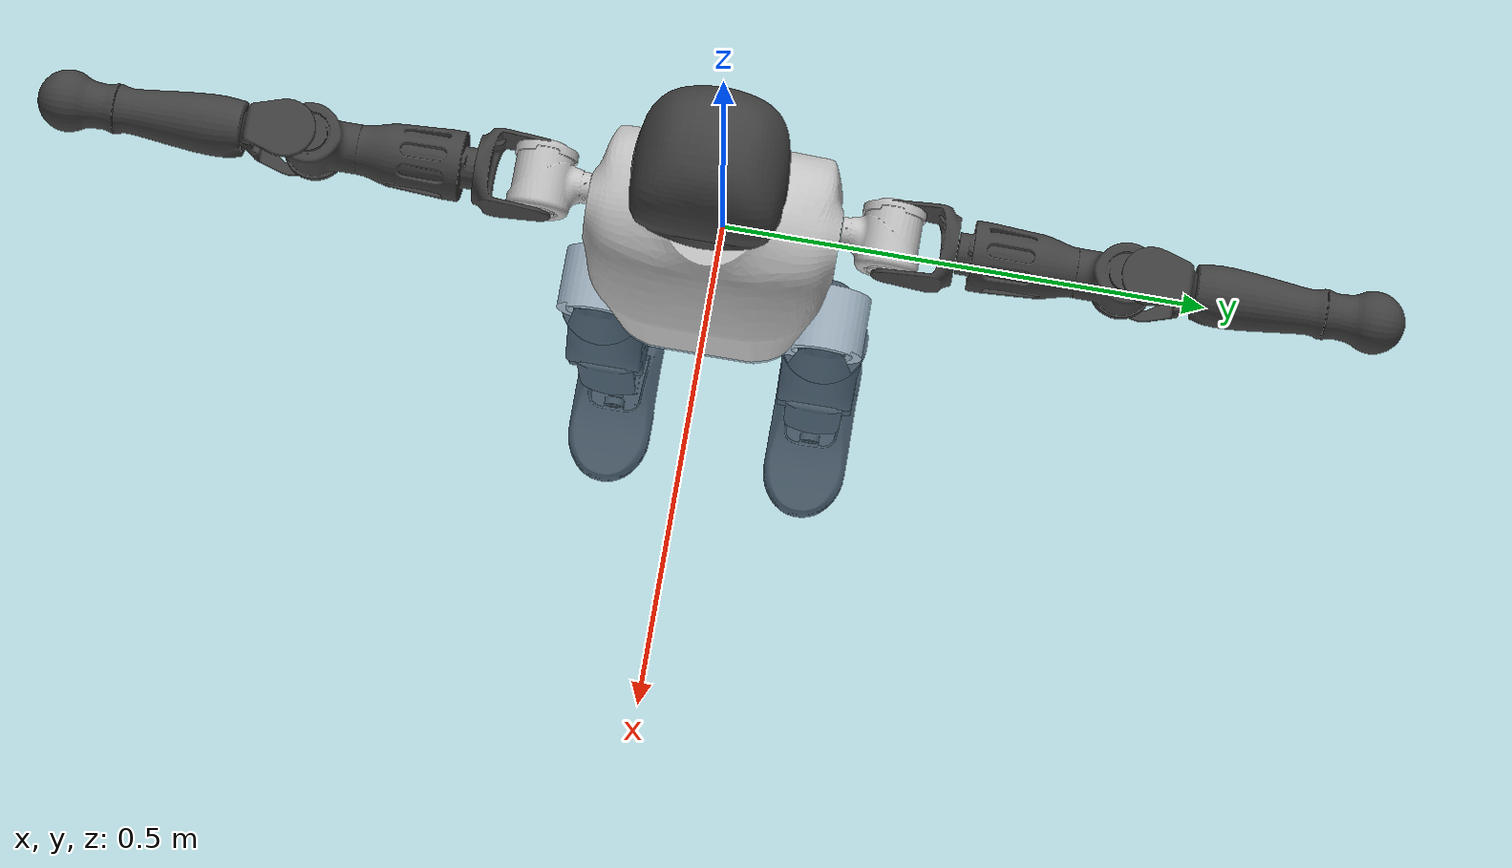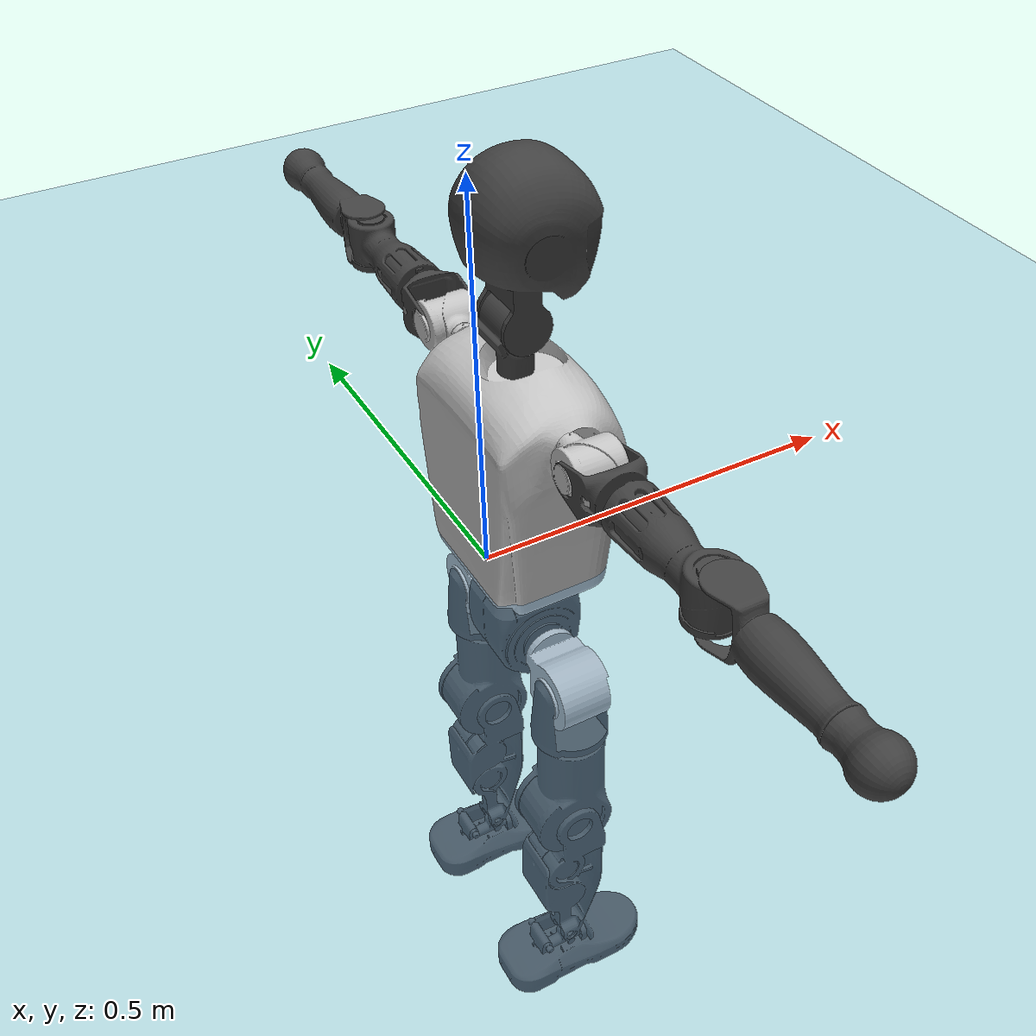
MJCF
<mujoco model="T1">
  <compiler angle="radian" assetdir="assets" balanceinertia="true" inertiafromgeom="false"/>

  <option timestep="0.005" density="1.2" viscosity="2e-05"/>

  <size nkey="1"/>

  <visual>
    <quality shadowsize="8192"/>
    <map shadowclip="0.5"/>
  </visual>

  <default>
    <default class="/">
      <joint armature="0.01" damping="0.01" frictionloss="0.1"/>
      <geom contype="0" conaffinity="0" group="1" solref="-1000 -80"/>
      <site size="0.01 0.005 0.005" group="5"/>
      <general forcelimited="true" biastype="affine" gainprm="25" biasprm="0 -25 -0.6"/>
      <default class="t1">
        <geom rgba="0.25 0.25 0.25 1"/>
        <default class="visual">
          <geom type="mesh" group="2"/>
        </default>
        <default class="collision">
          <geom group="3"/>
        </default>
        <default class="foot">
          <geom size="0.1115 0.05 0.015" type="box" condim="6" group="4" priority="1" solimp="0.015 1 0.015"/>
        </default>
        <default class="reward_collision_sphere">
          <geom group="5" rgba="1 0 0 1"/>
        </default>
      </default>
    </default>
  </default>

  <asset>
    <texture type="skybox" colorspace="auto" name="//unnamed_texture_0" builtin="gradient" rgb1="0.95 0.95 0.95" rgb2="0.95 0.95 0.95" width="100" height="600"/>
    <texture type="2d" colorspace="auto" name="texplane" builtin="checker" rgb1="0.345 0.575 0.748" rgb2="0.345 0.575 0.748" markrgb="1 1 1" width="512" height="512"/>
    <material name="MatPlane" class="/" texture="texplane" texuniform="true" texrepeat="2 2" specular="0.9"/>
    <mesh name="Trunk" class="/" file="Trunk.stl"/>
    <mesh name="H1" class="/" file="H1.stl"/>
    <mesh name="H2" class="/" file="H2.stl"/>
    <mesh name="AL1" class="/" file="AL1.stl"/>
    <mesh name="AL2" class="/" file="AL2.stl"/>
    <mesh name="AL3" class="/" file="AL3.stl"/>
    <mesh name="left_hand_link" class="/" file="left_hand_link.stl"/>
    <mesh name="AR1" class="/" file="AR1.stl"/>
    <mesh name="AR2" class="/" file="AR2.stl"/>
    <mesh name="AR3" class="/" file="AR3.stl"/>
    <mesh name="right_hand_link" class="/" file="right_hand_link.stl"/>
    <mesh name="Waist" class="/" file="Waist.stl"/>
    <mesh name="Hip_Pitch_Left" class="/" file="Hip_Pitch_Left.stl"/>
    <mesh name="Hip_Roll_Left" class="/" file="Hip_Roll_Left.stl"/>
    <mesh name="Hip_Yaw_Left" class="/" file="Hip_Yaw_Left.stl"/>
    <mesh name="Shank_Left" class="/" file="Shank_Left.stl"/>
    <mesh name="Ankle_Cross_Left" class="/" file="Ankle_Cross_Left.stl"/>
    <mesh name="left_foot_link" class="/" file="left_foot_link.stl"/>
    <mesh name="Hip_Pitch_Right" class="/" file="Hip_Pitch_Right.stl"/>
    <mesh name="Hip_Roll_Right" class="/" file="Hip_Roll_Right.stl"/>
    <mesh name="Hip_Yaw_Right" class="/" file="Hip_Yaw_Right.stl"/>
    <mesh name="Shank_Right" class="/" file="Shank_Right.stl"/>
    <mesh name="Ankle_Cross_Right" class="/" file="Ankle_Cross_Right.stl"/>
    <mesh name="right_foot_link" class="/" file="right_foot_link.stl"/>
  </asset>

  <worldbody>
    <geom name="floor" class="/" size="100 100 0.125" type="plane" group="0" material="MatPlane"/>
    <light name="toplight_shadow" class="/" pos="0 0 5" dir="0.0990148 0.0990148 -0.990148" type="directional" ambient="0.04 0.04 0.04" diffuse="0.55 0.55 0.55" specular="0.12 0.12 0.12"/>
    <light name="toplight_fill" class="/" pos="0 0 5" dir="0.0990148 0.0990148 -0.990148" type="directional" castshadow="false" ambient="0.04 0.04 0.04" diffuse="0.3 0.3 0.3" specular="0.08 0.08 0.08"/>
    <body name="trunk" childclass="t1" pos="-6.03715e-05 3.00333e-05 -0.000155699" quat="1 -5.17005e-05 -3.35159e-05 4.2606e-05">
      <inertial pos="0.0416138 -2.13076e-05 0.111802" quat="0.999986 -0.0010891 -0.00496806 -0.0015536" mass="11.6929" diaginertia="0.0258801 0.155908 0.0762766"/>
      <joint name="//unnamed_joint_0" type="free" armature="0" damping="0" frictionloss="0"/>
      <geom name="//unnamed_geom_1" class="visual" rgba="0.76 0.76 0.76 1" mesh="Trunk"/>
      <geom name="//unnamed_geom_2" class="collision" size="0.0747358 0.0996477 0.149472" pos="0.046515 0 0.127746" type="box"/>
      <geom name="//unnamed_geom_3" class="reward_collision_sphere" size="0.114595" pos="0.046515 0 0.106455"/>
      <geom name="//unnamed_geom_4" class="reward_collision_sphere" size="0.0149472" pos="0.046515 0.0977186 0"/>
      <geom name="//unnamed_geom_5" class="reward_collision_sphere" size="0.0149472" pos="0.046515 -0.0977186 0"/>
      <geom name="//unnamed_geom_6" class="reward_collision_sphere" size="0.0149472" pos="0.046515 0.12301 0.191619"/>
      <geom name="//unnamed_geom_7" class="reward_collision_sphere" size="0.0149472" pos="0.046515 -0.12301 0.191619"/>
      <site name="imu" pos="0.00404254 0.00274605 0.00225586" size="0.00996477"/>
      <camera name="track" pos="0 -2.29926 0" quat="0.707107 0.707107 0 0" mode="trackcom"/>
      <camera name="ego_camera" pos="0.0945805 0 0.447112" quat="-0.5 -0.5 0.5 0.5"/>
      <body name="H1" pos="0.0482594 3.83429e-05 0.257887" quat="1 -3.41265e-05 -3.56427e-05 -3.96737e-05">
        <inertial pos="-0.00107913 -0.0012276 0.0607711" quat="0.764414 -0.0139303 0.000857949 0.644575" mass="0.444651" diaginertia="6.81069e-05 0.000454731 0.000206041"/>
        <joint name="AAHead_yaw" pos="0 0 0" axis="-0.00103406 0.001042 0.999999" range="-1.56959 1.57176" armature="0.0100688" damping="0.00565416" frictionloss="0.0955167"/>
        <geom name="//unnamed_geom_8" class="visual" mesh="H1"/>
        <body name="H2" pos="-2.73481e-05 -0.000103221 0.0661124" quat="1 3.41535e-05 1.56491e-05 3.62391e-05">
          <inertial pos="0.00540482 0.00100563 0.104786" quat="0.988438 0.106358 -0.0747808 -0.0780082" mass="0.624412" diaginertia="0.000570263 0.00386012 0.00233058"/>
          <joint name="Head_pitch" pos="0 0 0" axis="0.0013997 -0.999998 0.0014095" stiffness="0.000159266" range="-1.21796 0.351774" armature="0.0100433" damping="0.00496093" frictionloss="0.104045"/>
          <geom name="//unnamed_geom_9" class="visual" mesh="H2"/>
          <geom name="//unnamed_geom_10" class="collision" size="0.0797182" pos="0.0077525 0 0.117101"/>
          <geom name="//unnamed_geom_11" class="reward_collision_sphere" size="0.089683" pos="0.015505 0 0.106455"/>
        </body>
      </body>
      <body name="AL1" pos="0.0462699 0.122515 0.233741" quat="1 4.50396e-05 0.000498319 2.97409e-05">
        <inertial pos="-0.000682029 0.052079 0.000462361" quat="0.504175 0.495724 -0.50388 0.496156" mass="0.523992" diaginertia="0.000382314 0.00259252 0.000397958"/>
        <joint name="Left_Shoulder_Pitch" pos="0 0 0" axis="0.000992722 0.999999 -0.000988569" range="-3.29682 1.21177" armature="0.0100011" damping="0.0105022" frictionloss="0.0999916"/>
        <geom name="//unnamed_geom_12" class="visual" rgba="0.76 0.76 0.76 1" mesh="AL1"/>
        <body name="AL2" pos="0.000813842 0.0544767 0.000897604" quat="1 -0.000143761 -0.000491 7.67931e-05">
          <inertial pos="0.00291719 0.0439472 -0.000970297" quat="0.485612 0.513431 -0.489549 0.510795" mass="0.156778" diaginertia="0.00011206 0.000690705 0.000240355"/>
          <joint name="Left_Shoulder_Roll" pos="0 0 0" axis="-1 -0.000800242 0.000185142" range="-1.57357 1.74264" armature="0.0101594" damping="0.00327885" frictionloss="0.0973016"/>
          <geom name="//unnamed_geom_13" class="visual" mesh="AL2"/>
          <body name="AL3" pos="0.000751774 0.0708431 -0.000392661" quat="1 -7.43097e-06 1.51003e-06 -1.70831e-06">
            <inertial pos="-0.000433886 0.0978138 0.000681188" quat="0.704861 0.709335 -0.000717713 0.00376474" mass="0.992695" diaginertia="0.00356142 0.0256549 0.000847198"/>
            <joint name="Left_Elbow_Pitch" pos="0 0 0" axis="-0.00202578 -0.999997 0.00141093" range="-2.26897 2.26942" armature="0.00981313" damping="0.0066825" frictionloss="0.0987506"/>
            <geom name="//unnamed_geom_14" class="visual" mesh="AL3"/>
            <geom name="//unnamed_geom_15" class="collision" size="0.0298943 0.0747358" pos="0 0.0574815 0" quat="0.707105 0.707108 0 0" type="cylinder"/>
            <geom name="//unnamed_geom_16" class="reward_collision_sphere" size="0.0358732"/>
            <body name="left_hand_link" pos="-3.58559e-09 0.169613 0.000631279" quat="1 0.000138561 -1.27692e-06 4.57267e-05">
              <inertial pos="-0.000432815 0.126052 0.000183372" quat="0.706856 0.707357 -0.000544565 0.000783588" mass="0.32479" diaginertia="0.00229957 0.0163094 0.000293461"/>
              <joint name="Left_Elbow_Yaw" pos="0 0 0" axis="0.000535321 0.001379 0.999999" range="-2.44563 0.00798407" armature="0.0100172" damping="0.00588027" frictionloss="0.096331"/>
              <geom name="//unnamed_geom_17" class="visual" mesh="left_hand_link"/>
              <geom name="//unnamed_geom_18" class="collision" size="0.0298943 0.0871918" pos="0 0.149452 0" quat="0.707105 0.707108 0 0" type="cylinder"/>
              <geom name="//unnamed_geom_19" class="reward_collision_sphere" size="0.0498239"/>
              <geom name="//unnamed_geom_20" class="reward_collision_sphere" size="0.0348767" pos="0 0.126459 0"/>
              <geom name="//unnamed_geom_21" class="reward_collision_sphere" size="0.0348767" pos="0 0.24717 0"/>
            </body>
          </body>
        </body>
      </body>
      <body name="AR1" pos="0.0450516 -0.121635 0.233792" quat="1 6.12632e-05 0.000773568 -0.0001093">
        <inertial pos="-0.00011562 -0.0517876 -0.000158566" quat="0.50418 0.495593 -0.504587 0.495563" mass="0.520358" diaginertia="0.000381826 0.00257215 0.000394874"/>
        <joint name="Right_Shoulder_Pitch" pos="0 0 0" axis="0.00200841 -0.999996 0.00216716" range="-1.22605 3.30486" armature="0.00993336" damping="0.00670546" frictionloss="0.0979817"/>
        <geom name="//unnamed_geom_22" class="visual" rgba="0.76 0.76 0.76 1" mesh="AR1"/>
        <body name="AR2" pos="-0.000780606 -0.0534347 -0.000219083" quat="1 -0.000113028 5.65229e-05 -6.97744e-06">
          <inertial pos="0.00374825 -0.0442475 0.000825582" quat="0.511918 0.48828 -0.511487 0.487753" mass="0.157854" diaginertia="0.00011118 0.000694795 0.000238956"/>
          <joint name="Right_Shoulder_Roll" pos="0 0 0" axis="-0.999978 0.00477356 0.00469426" range="-1.73964 1.56778" armature="0.0099575" damping="0.00385754" frictionloss="0.101884"/>
          <geom name="//unnamed_geom_23" class="visual" mesh="AR2"/>
          <body name="AR3" pos="0.000541214 -0.070253 -1.14069e-06" quat="1 -0.000293995 -0.000372082 0.000202771">
            <inertial pos="-8.50152e-06 -0.0978978 -0.000448587" quat="0.707907 0.706292 0.00430476 -0.000991807" mass="0.998381" diaginertia="0.00356346 0.0252819 0.00083904"/>
            <joint name="Right_Elbow_Pitch" pos="0 0 0" axis="-0.000708119 1 -0.000649565" range="-2.27283 2.27456" armature="0.00988688" damping="0.00735966" frictionloss="0.101778"/>
            <geom name="//unnamed_geom_24" class="visual" mesh="AR3"/>
            <geom name="//unnamed_geom_25" class="collision" size="0.0298943 0.0747358" pos="0 -0.0574815 0" quat="0.707105 0.707108 0 0" type="cylinder"/>
            <geom name="//unnamed_geom_26" class="reward_collision_sphere" size="0.0358732"/>
            <body name="right_hand_link" pos="-5.32275e-06 -0.168978 0.000125576" quat="1 9.14145e-05 2.12609e-05 0.000361373">
              <inertial pos="0.000187515 -0.126682 0.000705852" quat="0.705566 0.708641 -7.2499e-05 -0.00206573" mass="0.319133" diaginertia="0.00227572 0.0162662 0.000292997"/>
              <joint name="Right_Elbow_Yaw" pos="0 0 0" axis="-0.000744739 0.00139219 0.999999" range="-0.017826 2.43461" armature="0.0101055" damping="0.00711225" frictionloss="0.100487"/>
              <geom name="//unnamed_geom_27" class="visual" mesh="right_hand_link"/>
              <geom name="//unnamed_geom_28" class="collision" size="0.0298943 0.0871918" pos="0 -0.149452 0" quat="0.707105 0.707108 0 0" type="cylinder"/>
              <geom name="//unnamed_geom_29" class="reward_collision_sphere" size="0.0498239"/>
              <geom name="//unnamed_geom_30" class="reward_collision_sphere" size="0.0348767" pos="0 -0.126459 0"/>
              <geom name="//unnamed_geom_31" class="reward_collision_sphere" size="0.0348767" pos="0 -0.24717 0"/>
            </body>
          </body>
        </body>
      </body>
      <body name="Waist" pos="0.0494863 -0.00118111 -0.123766" quat="1 -3.45345e-05 -9.10513e-06 6.64483e-05">
        <inertial pos="0.000727118 3.17362e-05 0.00832874" quat="0.983715 0.000130818 -0.179709 0.00311526" mass="2.60517" diaginertia="0.00150774 0.0107776 0.00655427"/>
        <joint name="Waist" pos="0 0 0" axis="-0.000445431 -0.00113581 0.999999" range="-1.55575 1.57177" armature="0.009557" damping="0.0100476" frictionloss="0.0995923"/>
        <geom name="//unnamed_geom_32" class="visual" mesh="Waist"/>
        <body name="Hip_Pitch_Left" pos="0.000667737 0.121339 -0.000918805" quat="1 -0.000196852 2.06808e-06 0.000224039">
          <inertial pos="0.00050816 -0.00922405 -0.020283" quat="0.974718 0.223125 0.0117938 -0.000342566" mass="1.0136" diaginertia="0.000506581 0.00290105 0.00171218"/>
          <joint name="Left_Hip_Pitch" pos="0 0 0" axis="0.000781852 0.999999 0.00126145" range="-1.80058 1.57266" armature="0.0101626" damping="0.00666744" frictionloss="0.0997945"/>
          <geom name="//unnamed_geom_33" class="visual" rgba="0.76 0.76 0.76 1" mesh="Hip_Pitch_Left"/>
          <body name="Hip_Roll_Left" pos="0.00010808 0.000811067 -0.0214906" quat="1 -1.95473e-05 4.04818e-05 -3.90528e-05">
            <inertial pos="0.00172382 -0.000195515 -0.0577803" quat="0.70607 -0.00552259 -0.00712033 0.708085" mass="0.379638" diaginertia="0.000491719 0.00302106 0.000703103"/>
            <joint name="Left_Hip_Roll" pos="0 0 0" axis="-0.999993 -0.00307354 -0.00221102" range="-1.56896 0.21074" armature="0.00997447" damping="0.010155" frictionloss="0.103666"/>
            <geom name="//unnamed_geom_34" class="visual" mesh="Hip_Roll_Left"/>
            <geom name="//unnamed_geom_35" class="reward_collision_sphere" size="0.0548063"/>
            <body name="Hip_Yaw_Left" pos="0.00141121 -0.000104896 -0.087537" quat="1 -8.3297e-05 1.01351e-06 0.000198981">
              <inertial pos="-0.00486414 0.000143536 -0.0954802" quat="0.69668 -0.0339569 -0.0315455 0.715883" mass="2.13023" diaginertia="0.00722008 0.0505886 0.00355129"/>
              <joint name="Left_Hip_Yaw" pos="0 0 0" axis="-0.000425356 3.34911e-05 -1" range="-0.987456 1.00405" armature="0.0100263" damping="0.013159" frictionloss="0.100262"/>
              <geom name="//unnamed_geom_36" class="visual" mesh="Hip_Yaw_Left"/>
              <geom name="//unnamed_geom_37" class="collision" size="0.0498239 0.0797182" type="cylinder"/>
              <body name="Shank_Left" pos="-0.00986177 6.85776e-05 -0.144473" quat="1 -8.78289e-06 -2.71298e-05 0.000102045">
                <inertial pos="-0.00511307 0.000104073 -0.132726" quat="0.99756 0.00143102 -0.0237513 0.0656355" mass="1.69652" diaginertia="0.00971452 0.0693943 0.0025578"/>
                <joint name="Left_Knee_Pitch" pos="0 0 0" axis="-0.00502847 0.999986 0.00185379" range="-0.013175 2.35037" armature="0.00999971" damping="0.00919467" frictionloss="0.0972787"/>
                <geom name="//unnamed_geom_38" class="visual" mesh="Shank_Left"/>
                <geom name="//unnamed_geom_39" class="collision" size="0.0498239 0.0747358" pos="0 0 -0.127746" type="cylinder"/>
                <geom name="//unnamed_geom_40" class="reward_collision_sphere" size="0.064771"/>
                <body name="Ankle_Cross_Left" pos="-0.000631138 -0.000422296 -0.299293" quat="1 -8.63774e-05 1.81386e-05 1.68383e-06">
                  <inertial pos="-0.00238728 -0.000736725 -0.00930498" quat="0.440831 0.551312 0.550332 0.445935" mass="0.0717525" diaginertia="8.08825e-06 5.21764e-05 1.55187e-05"/>
                  <joint name="Left_Ankle_Pitch" pos="0 0 0" axis="-0.000113216 1 0.000354891" range="-0.869981 0.356201" armature="0.0102814" damping="0.00897602" frictionloss="0.101141"/>
                  <geom name="//unnamed_geom_41" class="visual" mesh="Ankle_Cross_Left"/>
                  <body name="left_foot_link" pos="-0.00131153 0.000764886 -0.0135405" quat="1 -0.000260338 4.49292e-05 2.20372e-05">
                    <inertial pos="0.000619585 3.8312e-05 -0.00913326" quat="0.000601335 0.61976 5.64463e-05 0.784791" mass="0.677953" diaginertia="0.000759605 0.00475929 0.00303031"/>
                    <joint name="Left_Ankle_Roll" pos="0 0 0" axis="-0.999998 -0.00191569 -0.000107873" range="-0.43896 0.440823" armature="0.00999597" damping="0.00969749" frictionloss="0.0998902"/>
                    <geom name="//unnamed_geom_42" class="visual" mesh="left_foot_link"/>
                    <geom name="left_foot" class="foot" size="0.105581 0.0509534 0.0152002" pos="0.0077525 0 -0.0159683"/>
                    <geom name="//unnamed_geom_44" class="reward_collision_sphere" size="0.0518168" pos="0.0077525 0 -0.0159683"/>
                    <geom name="//unnamed_geom_45" class="reward_collision_sphere" size="0.0298943" pos="0.0736487 -0.0264415 -0.0159683"/>
                    <geom name="//unnamed_geom_46" class="reward_collision_sphere" size="0.0298943" pos="-0.0542675 -0.0264415 -0.0159683"/>
                    <site name="left_foot" class="foot" pos="0.0077525 0 -0.0159683" size="0.00996477"/>
                  </body>
                </body>
              </body>
            </body>
          </body>
        </body>
        <body name="Hip_Pitch_Right" pos="-0.000795951 -0.121612 -0.000550221" quat="1 0.000274712 -1.11824e-06 0.00012258">
          <inertial pos="0.00107019 0.0084515 -0.0193395" quat="0.973792 -0.22698 0.0137509 -0.00450478" mass="0.999466" diaginertia="0.000500302 0.00289147 0.00167313"/>
          <joint name="Right_Hip_Pitch" pos="0 0 0" axis="-0.00168543 -0.999999 -0.000234455" stiffness="0.00137525" range="-1.57331 1.78743" armature="0.0103995" damping="0.00671654" frictionloss="0.0992411"/>
          <geom name="//unnamed_geom_47" class="visual" rgba="0.76 0.76 0.76 1" mesh="Hip_Pitch_Right"/>
          <body name="Hip_Roll_Right" pos="0.000133338 4.14271e-05 -0.0203331" quat="1 6.45802e-05 0.000277453 -6.79656e-05">
            <inertial pos="0.000981931 9.64707e-06 -0.0580405" quat="0.706835 -0.00617798 -0.00786946 0.707308" mass="0.379593" diaginertia="0.000487743 0.00302155 0.000701953"/>
            <joint name="Right_Hip_Roll" pos="0 0 0" axis="-0.999996 3.06686e-05 -0.00283647" range="-0.186976 1.55947" armature="0.0100062" damping="0.00708464" frictionloss="0.0960518"/>
            <geom name="//unnamed_geom_48" class="visual" mesh="Hip_Roll_Right"/>
            <geom name="//unnamed_geom_49" class="reward_collision_sphere" size="0.0548063"/>
            <body name="Hip_Yaw_Right" pos="-0.000378651 -0.0005294 -0.0869519" quat="1 1.24323e-05 7.5149e-06 1.02915e-05">
              <inertial pos="-0.00503891 0.000358296 -0.095257" quat="0.713986 -0.03141 -0.033672 0.698644" mass="2.17121" diaginertia="0.00723496 0.0506022 0.00360312"/>
              <joint name="Right_Hip_Yaw" pos="0 0 0" axis="-0.00812319 0.00229785 -0.999964" range="-1.00134 1.01139" armature="0.00977918" damping="0.00384602" frictionloss="0.0993833"/>
              <geom name="//unnamed_geom_50" class="visual" mesh="Hip_Yaw_Right"/>
              <geom name="//unnamed_geom_51" class="collision" size="0.0498239 0.0797182" type="cylinder"/>
              <body name="Shank_Right" pos="-0.0111254 -0.000142874 -0.142729" quat="1 0.000296062 0.000317061 0.000152435">
                <inertial pos="-0.00469186 -0.000436751 -0.12992" quat="0.999244 9.04824e-05 -0.0233576 -0.0310927" mass="1.78809" diaginertia="0.00988139 0.0714981 0.00271493"/>
                <joint name="Right_Knee_Pitch" pos="0 0 0" axis="0.00676299 -0.999954 -0.00686816" range="-2.34082 -0.00202272" armature="0.0102186" damping="0.00534915" frictionloss="0.0997826"/>
                <geom name="//unnamed_geom_52" class="visual" mesh="Shank_Right"/>
                <geom name="//unnamed_geom_53" class="collision" size="0.0498239 0.0747358" pos="0 0 -0.127746" type="cylinder"/>
                <geom name="//unnamed_geom_54" class="reward_collision_sphere" size="0.064771"/>
                <body name="Ankle_Cross_Right" pos="0.000693407 -1.91009e-05 -0.298225" quat="1 6.03141e-05 -8.26902e-05 3.06689e-08">
                  <inertial pos="-0.00297024 0.00101415 -0.008494" quat="0.443012 0.551101 0.550987 0.443216" mass="0.0717447" diaginertia="7.98556e-06 5.06886e-05 1.53399e-05"/>
                  <joint name="Right_Ankle_Pitch" pos="0 0 0" axis="0.00233234 -0.999997 -0.000986169" range="-0.342621 0.874083" armature="0.00997035" damping="0.00682787" frictionloss="0.0972259"/>
                  <geom name="//unnamed_geom_55" class="visual" mesh="Ankle_Cross_Right"/>
                  <body name="right_foot_link" pos="0.000236721 -0.000751224 -0.0121184" quat="1 2.79538e-06 -4.03673e-06 7.75107e-07">
                    <inertial pos="-0.00051171 -0.000444916 -0.00962527" quat="-0.000196653 0.620347 0.000494051 0.784328" mass="0.678173" diaginertia="0.000756377 0.00483111 0.00297785"/>
                    <joint name="Right_Ankle_Roll" pos="0 0 0" axis="-0.999987 -0.00334307 -0.00382522" range="-0.444347 0.439627" armature="0.00995803" damping="0.00532232" frictionloss="0.100367"/>
                    <geom name="//unnamed_geom_56" class="visual" mesh="right_foot_link"/>
                    <geom name="right_foot" class="foot" size="0.102694 0.0497824 0.015487" pos="0.0077525 0 -0.0159683"/>
                    <geom name="//unnamed_geom_58" class="reward_collision_sphere" size="0.0398591"/>
                    <geom name="//unnamed_geom_59" class="reward_collision_sphere" size="0.0298943" pos="0.0077525 0 -0.0159683"/>
                    <geom name="//unnamed_geom_60" class="reward_collision_sphere" size="0.0298943" pos="0.0736487 0.0264415 -0.0159683"/>
                    <geom name="//unnamed_geom_61" class="reward_collision_sphere" size="0.0298943" pos="-0.0542675 0.0264415 -0.0159683"/>
                    <site name="right_foot" class="foot" pos="0.0077525 0 -0.0159683" size="0.00996477"/>
                  </body>
                </body>
              </body>
            </body>
          </body>
        </body>
      </body>
    </body>
  </worldbody>

  <contact>
    <pair class="/" geom1="floor" geom2="left_foot" name="//unnamed_contact_0"/>
    <pair class="/" geom1="floor" geom2="right_foot" name="//unnamed_contact_1"/>
  </contact>

  <actuator>
    <general name="AAHead_yaw" class="/" joint="AAHead_yaw" forcerange="-7.07979 7.07979" gainprm="25.4021" biasprm="0 -25.4021 -0.585329"/>
    <general name="Head_pitch" class="/" joint="Head_pitch" forcerange="-6.98386 6.98386" gainprm="25.4021" biasprm="0 -25.4021 -0.585329"/>
    <general name="Left_Shoulder_Pitch" class="/" joint="Left_Shoulder_Pitch" forcerange="-18.4218 18.4218" gainprm="25.4021" biasprm="0 -25.4021 -0.585329"/>
    <general name="Left_Shoulder_Roll" class="/" joint="Left_Shoulder_Roll" forcerange="-17.6989 17.6989" gainprm="25.4021" biasprm="0 -25.4021 -0.585329"/>
    <general name="Left_Elbow_Pitch" class="/" joint="Left_Elbow_Pitch" forcerange="-18.114 18.114" gainprm="25.4021" biasprm="0 -25.4021 -0.585329"/>
    <general name="Left_Elbow_Yaw" class="/" joint="Left_Elbow_Yaw" forcerange="-17.942 17.942" gainprm="25.4021" biasprm="0 -25.4021 -0.585329"/>
    <general name="Right_Shoulder_Pitch" class="/" joint="Right_Shoulder_Pitch" forcerange="-18.1315 18.1315" gainprm="25.4021" biasprm="0 -25.4021 -0.585329"/>
    <general name="Right_Shoulder_Roll" class="/" joint="Right_Shoulder_Roll" forcerange="-18.4825 18.4825" gainprm="25.4021" biasprm="0 -25.4021 -0.585329"/>
    <general name="Right_Elbow_Pitch" class="/" joint="Right_Elbow_Pitch" forcerange="-18.043 18.043" gainprm="25.4021" biasprm="0 -25.4021 -0.585329"/>
    <general name="Right_Elbow_Yaw" class="/" joint="Right_Elbow_Yaw" forcerange="-17.9181 17.9181" gainprm="25.4021" biasprm="0 -25.4021 -0.585329"/>
    <general name="Waist" class="/" joint="Waist" forcerange="-29.8002 29.8002" gainprm="25.4021" biasprm="0 -25.4021 -0.585329"/>
    <general name="Left_Hip_Pitch" class="/" joint="Left_Hip_Pitch" forcerange="-44.9032 44.9032" gainprm="25.4021" biasprm="0 -25.4021 -0.585329"/>
    <general name="Left_Hip_Roll" class="/" joint="Left_Hip_Roll" forcerange="-29.0796 29.0796" gainprm="25.4021" biasprm="0 -25.4021 -0.585329"/>
    <general name="Left_Hip_Yaw" class="/" joint="Left_Hip_Yaw" forcerange="-30.5719 30.5719" gainprm="25.4021" biasprm="0 -25.4021 -0.585329"/>
    <general name="Left_Knee_Pitch" class="/" joint="Left_Knee_Pitch" forcerange="-59.672 59.672" gainprm="25.4021" biasprm="0 -25.4021 -0.585329"/>
    <general name="Left_Ankle_Pitch" class="/" joint="Left_Ankle_Pitch" forcerange="-19.8471 19.8471" gainprm="25.4021" biasprm="0 -25.4021 -0.585329"/>
    <general name="Left_Ankle_Roll" class="/" joint="Left_Ankle_Roll" forcerange="-14.7917 14.7917" gainprm="25.4021" biasprm="0 -25.4021 -0.585329"/>
    <general name="Right_Hip_Pitch" class="/" joint="Right_Hip_Pitch" forcerange="-44.7928 44.7928" gainprm="25.4021" biasprm="0 -25.4021 -0.585329"/>
    <general name="Right_Hip_Roll" class="/" joint="Right_Hip_Roll" forcerange="-30.0694 30.0694" gainprm="25.4021" biasprm="0 -25.4021 -0.585329"/>
    <general name="Right_Hip_Yaw" class="/" joint="Right_Hip_Yaw" forcerange="-30.2835 30.2835" gainprm="25.4021" biasprm="0 -25.4021 -0.585329"/>
    <general name="Right_Knee_Pitch" class="/" joint="Right_Knee_Pitch" forcerange="-59.5805 59.5805" gainprm="25.4021" biasprm="0 -25.4021 -0.585329"/>
    <general name="Right_Ankle_Pitch" class="/" joint="Right_Ankle_Pitch" forcerange="-19.6179 19.6179" gainprm="25.4021" biasprm="0 -25.4021 -0.585329"/>
    <general name="Right_Ankle_Roll" class="/" joint="Right_Ankle_Roll" forcerange="-15.4288 15.4288" gainprm="25.4021" biasprm="0 -25.4021 -0.585329"/>
  </actuator>

  <sensor>
    <gyro site="imu" name="imu_angular_velocity"/>
    <velocimeter site="imu" name="imu_linear_velocity"/>
    <framelinvel objtype="site" objname="left_foot" name="left_foot_global_linear_velocity"/>
    <framelinvel objtype="site" objname="right_foot" name="right_foot_global_linear_velocity"/>
  </sensor>

  <keyframe>
    <key name="home" qpos="0 0 0.6385 1 0 0 0 0 0 0 1.4 0 -0.4 0 -1.4 0 0.4 0 -0.4 0 0 0.8 -0.4 0 0.4 0 0 -0.8 0.4 0"/>
  </keyframe>
</mujoco>
